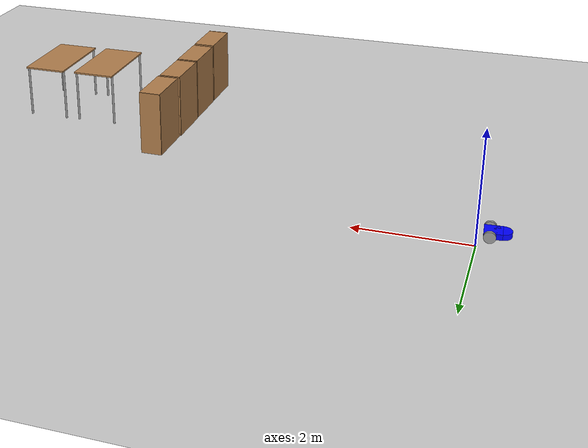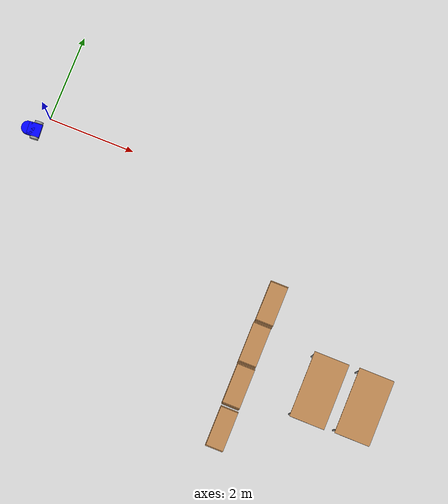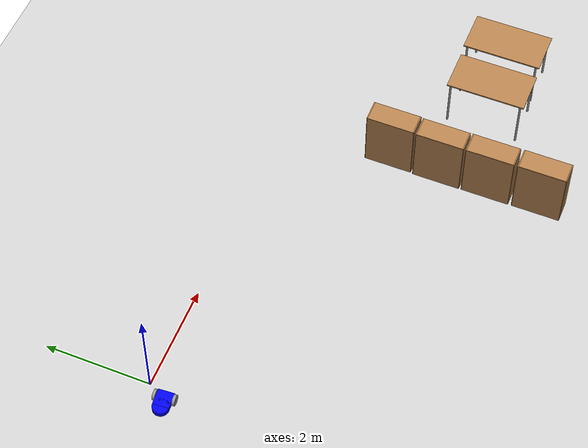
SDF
<sdf version="1.6">
 <world name="default">
  <model name="ground_plane">
   <static>1</static>
   <link name="link">
    <collision name="collision">
     <geometry><plane><normal>0 0 1</normal><size>100 100</size></plane></geometry>
     <surface>
      <contact><collide_bitmask>65535</collide_bitmask></contact>
      <friction><ode><mu>100</mu><mu2>50</mu2></ode></friction>
     </surface>
    </collision>
    <visual name="visual">
     <cast_shadows>0</cast_shadows>
     <geometry><plane><normal>0 0 1</normal><size>100 100</size></plane></geometry>
     <material>
      <script><uri>file://media/materials/scripts/gazebo.material</uri><name>Gazebo/Grey</name></script>
     </material>
    </visual>
   </link>
  </model>
  <model name="table_clone">
   <static>1</static>
   <link name="link">
    <collision name="surface">
     <pose>0 0 1 0 -0 0</pose>
     <geometry><box><size>1.5 0.8 0.03</size></box></geometry>
     <surface><friction><ode><mu>0.6</mu><mu2>0.6</mu2></ode></friction></surface>
    </collision>
    <visual name="visual1">
     <pose>0 0 1 0 -0 0</pose>
     <geometry><box><size>1.5 0.8 0.03</size></box></geometry>
     <material>
      <script><uri>file://media/materials/scripts/gazebo.material</uri><name>Gazebo/Wood</name></script>
     </material>
    </visual>
    <collision name="front_left_leg">
     <pose>0.68 0.38 0.5 0 -0 0</pose>
     <geometry><cylinder><radius>0.02</radius><length>1</length></cylinder></geometry>
    </collision>
    <visual name="front_left_leg">
     <pose>0.68 0.38 0.5 0 -0 0</pose>
     <geometry><cylinder><radius>0.02</radius><length>1</length></cylinder></geometry>
     <material>
      <script><uri>file://media/materials/scripts/gazebo.material</uri><name>Gazebo/Grey</name></script>
     </material>
    </visual>
    <collision name="front_right_leg">
     <pose>0.68 -0.38 0.5 0 -0 0</pose>
     <geometry><cylinder><radius>0.02</radius><length>1</length></cylinder></geometry>
    </collision>
    <visual name="front_right_leg">
     <pose>0.68 -0.38 0.5 0 -0 0</pose>
     <geometry><cylinder><radius>0.02</radius><length>1</length></cylinder></geometry>
     <material>
      <script><uri>file://media/materials/scripts/gazebo.material</uri><name>Gazebo/Grey</name></script>
     </material>
    </visual>
    <collision name="back_right_leg">
     <pose>-0.68 -0.38 0.5 0 -0 0</pose>
     <geometry><cylinder><radius>0.02</radius><length>1</length></cylinder></geometry>
    </collision>
    <visual name="back_right_leg">
     <pose>-0.68 -0.38 0.5 0 -0 0</pose>
     <geometry><cylinder><radius>0.02</radius><length>1</length></cylinder></geometry>
     <material>
      <script><uri>file://media/materials/scripts/gazebo.material</uri><name>Gazebo/Grey</name></script>
     </material>
    </visual>
    <collision name="back_left_leg">
     <pose>-0.68 0.38 0.5 0 -0 0</pose>
     <geometry><cylinder><radius>0.02</radius><length>1</length></cylinder></geometry>
    </collision>
    <visual name="back_left_leg">
     <pose>-0.68 0.38 0.5 0 -0 0</pose>
     <geometry><cylinder><radius>0.02</radius><length>1</length></cylinder></geometry>
     <material>
      <script><uri>file://media/materials/scripts/gazebo.material</uri><name>Gazebo/Grey</name></script>
     </material>
    </visual>
   </link>
   <pose>7.79141 -3.45752 0 0 -0 1.5708</pose>
  </model>
  <model name="table_clone_0">
   <static>1</static>
   <link name="link">
    <collision name="surface">
     <pose>0 0 1 0 -0 0</pose>
     <geometry><box><size>1.5 0.8 0.03</size></box></geometry>
     <surface><friction><ode><mu>0.6</mu><mu2>0.6</mu2></ode></friction></surface>
    </collision>
    <visual name="visual1">
     <pose>0 0 1 0 -0 0</pose>
     <geometry><box><size>1.5 0.8 0.03</size></box></geometry>
     <material>
      <script><uri>file://media/materials/scripts/gazebo.material</uri><name>Gazebo/Wood</name></script>
     </material>
    </visual>
    <collision name="front_left_leg">
     <pose>0.68 0.38 0.5 0 -0 0</pose>
     <geometry><cylinder><radius>0.02</radius><length>1</length></cylinder></geometry>
    </collision>
    <visual name="front_left_leg">
     <pose>0.68 0.38 0.5 0 -0 0</pose>
     <geometry><cylinder><radius>0.02</radius><length>1</length></cylinder></geometry>
     <material>
      <script><uri>file://media/materials/scripts/gazebo.material</uri><name>Gazebo/Grey</name></script>
     </material>
    </visual>
    <collision name="front_right_leg">
     <pose>0.68 -0.38 0.5 0 -0 0</pose>
     <geometry><cylinder><radius>0.02</radius><length>1</length></cylinder></geometry>
    </collision>
    <visual name="front_right_leg">
     <pose>0.68 -0.38 0.5 0 -0 0</pose>
     <geometry><cylinder><radius>0.02</radius><length>1</length></cylinder></geometry>
     <material>
      <script><uri>file://media/materials/scripts/gazebo.material</uri><name>Gazebo/Grey</name></script>
     </material>
    </visual>
    <collision name="back_right_leg">
     <pose>-0.68 -0.38 0.5 0 -0 0</pose>
     <geometry><cylinder><radius>0.02</radius><length>1</length></cylinder></geometry>
    </collision>
    <visual name="back_right_leg">
     <pose>-0.68 -0.38 0.5 0 -0 0</pose>
     <geometry><cylinder><radius>0.02</radius><length>1</length></cylinder></geometry>
     <material>
      <script><uri>file://media/materials/scripts/gazebo.material</uri><name>Gazebo/Grey</name></script>
     </material>
    </visual>
    <collision name="back_left_leg">
     <pose>-0.68 0.38 0.5 0 -0 0</pose>
     <geometry><cylinder><radius>0.02</radius><length>1</length></cylinder></geometry>
    </collision>
    <visual name="back_left_leg">
     <pose>-0.68 0.38 0.5 0 -0 0</pose>
     <geometry><cylinder><radius>0.02</radius><length>1</length></cylinder></geometry>
     <material>
      <script><uri>file://media/materials/scripts/gazebo.material</uri><name>Gazebo/Grey</name></script>
     </material>
    </visual>
   </link>
   <pose>8.82127 -3.42896 0 0 -0 1.5708</pose>
  </model>
  <model name="bookshelf_clone">
   <static>1</static>
   <link name="link">
    <inertial><mass>1</mass></inertial>
    <collision name="back">
     <pose>0 0.005 0.6 0 -0 0</pose>
     <geometry><box><size>0.9 0.01 1.2</size></box></geometry>
    </collision>
    <visual name="visual1">
     <pose>0 0.005 0.6 0 -0 0</pose>
     <geometry><box><size>0.9 0.01 1.2</size></box></geometry>
     <material>
      <script><uri>file://media/materials/scripts/gazebo.material</uri><name>Gazebo/Wood</name></script>
     </material>
    </visual>
    <collision name="left_side">
     <pose>0.45 -0.195 0.6 0 -0 0</pose>
     <geometry><box><size>0.02 0.4 1.2</size></box></geometry>
    </collision>
    <visual name="visual2">
     <pose>0.45 -0.195 0.6 0 -0 0</pose>
     <geometry><box><size>0.02 0.4 1.2</size></box></geometry>
     <material>
      <script><uri>file://media/materials/scripts/gazebo.material</uri><name>Gazebo/Wood</name></script>
     </material>
    </visual>
    <collision name="right_side">
     <pose>-0.45 -0.195 0.6 0 -0 0</pose>
     <geometry><box><size>0.02 0.4 1.2</size></box></geometry>
    </collision>
    <visual name="visual3">
     <pose>-0.45 -0.195 0.6 0 -0 0</pose>
     <geometry><box><size>0.02 0.4 1.2</size></box></geometry>
     <material>
      <script><uri>file://media/materials/scripts/gazebo.material</uri><name>Gazebo/Wood</name></script>
     </material>
    </visual>
    <collision name="bottom">
     <pose>0 -0.195 0.03 0 -0 0</pose>
     <geometry><box><size>0.88 0.4 0.06</size></box></geometry>
    </collision>
    <visual name="visual4">
     <pose>0 -0.195 0.03 0 -0 0</pose>
     <geometry><box><size>0.88 0.4 0.06</size></box></geometry>
     <material>
      <script><uri>file://media/materials/scripts/gazebo.material</uri><name>Gazebo/Wood</name></script>
     </material>
    </visual>
    <collision name="top">
     <pose>0 -0.195 1.19 0 -0 0</pose>
     <geometry><box><size>0.88 0.4 0.02</size></box></geometry>
    </collision>
    <visual name="visual5">
     <pose>0 -0.195 1.19 0 -0 0</pose>
     <geometry><box><size>0.88 0.4 0.02</size></box></geometry>
     <material>
      <script><uri>file://media/materials/scripts/gazebo.material</uri><name>Gazebo/Wood</name></script>
     </material>
    </visual>
    <collision name="low_shelf">
     <pose>0 -0.195 0.43 0 -0 0</pose>
     <geometry><box><size>0.88 0.4 0.02</size></box></geometry>
    </collision>
    <visual name="visual6">
     <pose>0 -0.195 0.43 0 -0 0</pose>
     <geometry><box><size>0.88 0.4 0.02</size></box></geometry>
     <material>
      <script><uri>file://media/materials/scripts/gazebo.material</uri><name>Gazebo/Wood</name></script>
     </material>
    </visual>
    <collision name="high_shelf">
     <pose>0 -0.195 0.8 0 -0 0</pose>
     <geometry><box><size>0.88 0.4 0.02</size></box></geometry>
    </collision>
    <visual name="visual7">
     <pose>0 -0.195 0.8 0 -0 0</pose>
     <geometry><box><size>0.88 0.4 0.02</size></box></geometry>
     <material>
      <script><uri>file://media/materials/scripts/gazebo.material</uri><name>Gazebo/Wood</name></script>
     </material>
    </visual>
   </link>
   <pose>5.95095 -5.00341 0 0 -0 1.5708</pose>
  </model>
  <model name="bookshelf_clone_0">
   <static>1</static>
   <link name="link">
    <inertial><mass>1</mass></inertial>
    <collision name="back">
     <pose>0 0.005 0.6 0 -0 0</pose>
     <geometry><box><size>0.9 0.01 1.2</size></box></geometry>
    </collision>
    <visual name="visual1">
     <pose>0 0.005 0.6 0 -0 0</pose>
     <geometry><box><size>0.9 0.01 1.2</size></box></geometry>
     <material>
      <script><uri>file://media/materials/scripts/gazebo.material</uri><name>Gazebo/Wood</name></script>
     </material>
    </visual>
    <collision name="left_side">
     <pose>0.45 -0.195 0.6 0 -0 0</pose>
     <geometry><box><size>0.02 0.4 1.2</size></box></geometry>
    </collision>
    <visual name="visual2">
     <pose>0.45 -0.195 0.6 0 -0 0</pose>
     <geometry><box><size>0.02 0.4 1.2</size></box></geometry>
     <material>
      <script><uri>file://media/materials/scripts/gazebo.material</uri><name>Gazebo/Wood</name></script>
     </material>
    </visual>
    <collision name="right_side">
     <pose>-0.45 -0.195 0.6 0 -0 0</pose>
     <geometry><box><size>0.02 0.4 1.2</size></box></geometry>
    </collision>
    <visual name="visual3">
     <pose>-0.45 -0.195 0.6 0 -0 0</pose>
     <geometry><box><size>0.02 0.4 1.2</size></box></geometry>
     <material>
      <script><uri>file://media/materials/scripts/gazebo.material</uri><name>Gazebo/Wood</name></script>
     </material>
    </visual>
    <collision name="bottom">
     <pose>0 -0.195 0.03 0 -0 0</pose>
     <geometry><box><size>0.88 0.4 0.06</size></box></geometry>
    </collision>
    <visual name="visual4">
     <pose>0 -0.195 0.03 0 -0 0</pose>
     <geometry><box><size>0.88 0.4 0.06</size></box></geometry>
     <material>
      <script><uri>file://media/materials/scripts/gazebo.material</uri><name>Gazebo/Wood</name></script>
     </material>
    </visual>
    <collision name="top">
     <pose>0 -0.195 1.19 0 -0 0</pose>
     <geometry><box><size>0.88 0.4 0.02</size></box></geometry>
    </collision>
    <visual name="visual5">
     <pose>0 -0.195 1.19 0 -0 0</pose>
     <geometry><box><size>0.88 0.4 0.02</size></box></geometry>
     <material>
      <script><uri>file://media/materials/scripts/gazebo.material</uri><name>Gazebo/Wood</name></script>
     </material>
    </visual>
    <collision name="low_shelf">
     <pose>0 -0.195 0.43 0 -0 0</pose>
     <geometry><box><size>0.88 0.4 0.02</size></box></geometry>
    </collision>
    <visual name="visual6">
     <pose>0 -0.195 0.43 0 -0 0</pose>
     <geometry><box><size>0.88 0.4 0.02</size></box></geometry>
     <material>
      <script><uri>file://media/materials/scripts/gazebo.material</uri><name>Gazebo/Wood</name></script>
     </material>
    </visual>
    <collision name="high_shelf">
     <pose>0 -0.195 0.8 0 -0 0</pose>
     <geometry><box><size>0.88 0.4 0.02</size></box></geometry>
    </collision>
    <visual name="visual7">
     <pose>0 -0.195 0.8 0 -0 0</pose>
     <geometry><box><size>0.88 0.4 0.02</size></box></geometry>
     <material>
      <script><uri>file://media/materials/scripts/gazebo.material</uri><name>Gazebo/Wood</name></script>
     </material>
    </visual>
   </link>
   <pose>5.94427 -4.02578 0 0 -0 1.5708</pose>
  </model>
  <model name="bookshelf_clone_1">
   <static>1</static>
   <link name="link">
    <inertial><mass>1</mass></inertial>
    <collision name="back">
     <pose>0 0.005 0.6 0 -0 0</pose>
     <geometry><box><size>0.9 0.01 1.2</size></box></geometry>
    </collision>
    <visual name="visual1">
     <pose>0 0.005 0.6 0 -0 0</pose>
     <geometry><box><size>0.9 0.01 1.2</size></box></geometry>
     <material>
      <script><uri>file://media/materials/scripts/gazebo.material</uri><name>Gazebo/Wood</name></script>
     </material>
    </visual>
    <collision name="left_side">
     <pose>0.45 -0.195 0.6 0 -0 0</pose>
     <geometry><box><size>0.02 0.4 1.2</size></box></geometry>
    </collision>
    <visual name="visual2">
     <pose>0.45 -0.195 0.6 0 -0 0</pose>
     <geometry><box><size>0.02 0.4 1.2</size></box></geometry>
     <material>
      <script><uri>file://media/materials/scripts/gazebo.material</uri><name>Gazebo/Wood</name></script>
     </material>
    </visual>
    <collision name="right_side">
     <pose>-0.45 -0.195 0.6 0 -0 0</pose>
     <geometry><box><size>0.02 0.4 1.2</size></box></geometry>
    </collision>
    <visual name="visual3">
     <pose>-0.45 -0.195 0.6 0 -0 0</pose>
     <geometry><box><size>0.02 0.4 1.2</size></box></geometry>
     <material>
      <script><uri>file://media/materials/scripts/gazebo.material</uri><name>Gazebo/Wood</name></script>
     </material>
    </visual>
    <collision name="bottom">
     <pose>0 -0.195 0.03 0 -0 0</pose>
     <geometry><box><size>0.88 0.4 0.06</size></box></geometry>
    </collision>
    <visual name="visual4">
     <pose>0 -0.195 0.03 0 -0 0</pose>
     <geometry><box><size>0.88 0.4 0.06</size></box></geometry>
     <material>
      <script><uri>file://media/materials/scripts/gazebo.material</uri><name>Gazebo/Wood</name></script>
     </material>
    </visual>
    <collision name="top">
     <pose>0 -0.195 1.19 0 -0 0</pose>
     <geometry><box><size>0.88 0.4 0.02</size></box></geometry>
    </collision>
    <visual name="visual5">
     <pose>0 -0.195 1.19 0 -0 0</pose>
     <geometry><box><size>0.88 0.4 0.02</size></box></geometry>
     <material>
      <script><uri>file://media/materials/scripts/gazebo.material</uri><name>Gazebo/Wood</name></script>
     </material>
    </visual>
    <collision name="low_shelf">
     <pose>0 -0.195 0.43 0 -0 0</pose>
     <geometry><box><size>0.88 0.4 0.02</size></box></geometry>
    </collision>
    <visual name="visual6">
     <pose>0 -0.195 0.43 0 -0 0</pose>
     <geometry><box><size>0.88 0.4 0.02</size></box></geometry>
     <material>
      <script><uri>file://media/materials/scripts/gazebo.material</uri><name>Gazebo/Wood</name></script>
     </material>
    </visual>
    <collision name="high_shelf">
     <pose>0 -0.195 0.8 0 -0 0</pose>
     <geometry><box><size>0.88 0.4 0.02</size></box></geometry>
    </collision>
    <visual name="visual7">
     <pose>0 -0.195 0.8 0 -0 0</pose>
     <geometry><box><size>0.88 0.4 0.02</size></box></geometry>
     <material>
      <script><uri>file://media/materials/scripts/gazebo.material</uri><name>Gazebo/Wood</name></script>
     </material>
    </visual>
   </link>
   <pose>5.93869 -3.06933 0 0 -0 1.5708</pose>
  </model>
  <model name="bookshelf_clone_2">
   <static>1</static>
   <link name="link">
    <inertial><mass>1</mass></inertial>
    <collision name="back">
     <pose>0 0.005 0.6 0 -0 0</pose>
     <geometry><box><size>0.9 0.01 1.2</size></box></geometry>
    </collision>
    <visual name="visual1">
     <pose>0 0.005 0.6 0 -0 0</pose>
     <geometry><box><size>0.9 0.01 1.2</size></box></geometry>
     <material>
      <script><uri>file://media/materials/scripts/gazebo.material</uri><name>Gazebo/Wood</name></script>
     </material>
    </visual>
    <collision name="left_side">
     <pose>0.45 -0.195 0.6 0 -0 0</pose>
     <geometry><box><size>0.02 0.4 1.2</size></box></geometry>
    </collision>
    <visual name="visual2">
     <pose>0.45 -0.195 0.6 0 -0 0</pose>
     <geometry><box><size>0.02 0.4 1.2</size></box></geometry>
     <material>
      <script><uri>file://media/materials/scripts/gazebo.material</uri><name>Gazebo/Wood</name></script>
     </material>
    </visual>
    <collision name="right_side">
     <pose>-0.45 -0.195 0.6 0 -0 0</pose>
     <geometry><box><size>0.02 0.4 1.2</size></box></geometry>
    </collision>
    <visual name="visual3">
     <pose>-0.45 -0.195 0.6 0 -0 0</pose>
     <geometry><box><size>0.02 0.4 1.2</size></box></geometry>
     <material>
      <script><uri>file://media/materials/scripts/gazebo.material</uri><name>Gazebo/Wood</name></script>
     </material>
    </visual>
    <collision name="bottom">
     <pose>0 -0.195 0.03 0 -0 0</pose>
     <geometry><box><size>0.88 0.4 0.06</size></box></geometry>
    </collision>
    <visual name="visual4">
     <pose>0 -0.195 0.03 0 -0 0</pose>
     <geometry><box><size>0.88 0.4 0.06</size></box></geometry>
     <material>
      <script><uri>file://media/materials/scripts/gazebo.material</uri><name>Gazebo/Wood</name></script>
     </material>
    </visual>
    <collision name="top">
     <pose>0 -0.195 1.19 0 -0 0</pose>
     <geometry><box><size>0.88 0.4 0.02</size></box></geometry>
    </collision>
    <visual name="visual5">
     <pose>0 -0.195 1.19 0 -0 0</pose>
     <geometry><box><size>0.88 0.4 0.02</size></box></geometry>
     <material>
      <script><uri>file://media/materials/scripts/gazebo.material</uri><name>Gazebo/Wood</name></script>
     </material>
    </visual>
    <collision name="low_shelf">
     <pose>0 -0.195 0.43 0 -0 0</pose>
     <geometry><box><size>0.88 0.4 0.02</size></box></geometry>
    </collision>
    <visual name="visual6">
     <pose>0 -0.195 0.43 0 -0 0</pose>
     <geometry><box><size>0.88 0.4 0.02</size></box></geometry>
     <material>
      <script><uri>file://media/materials/scripts/gazebo.material</uri><name>Gazebo/Wood</name></script>
     </material>
    </visual>
    <collision name="high_shelf">
     <pose>0 -0.195 0.8 0 -0 0</pose>
     <geometry><box><size>0.88 0.4 0.02</size></box></geometry>
    </collision>
    <visual name="visual7">
     <pose>0 -0.195 0.8 0 -0 0</pose>
     <geometry><box><size>0.88 0.4 0.02</size></box></geometry>
     <material>
      <script><uri>file://media/materials/scripts/gazebo.material</uri><name>Gazebo/Wood</name></script>
     </material>
    </visual>
   </link>
   <pose>5.95448 -2.11176 0 0 -0 1.5708</pose>
  </model>
  <model name="robot-03">
   <link name="link_0">
    <pose>-4.44604 -7.61761 0.065 0 -0 0</pose>
    <inertial>
     <mass>1</mass>
     <inertia>
      <ixx>0.166667</ixx>
      <ixy>0</ixy>
      <ixz>0</ixz>
      <iyy>0.166667</iyy>
      <iyz>0</iyz>
      <izz>0.166667</izz>
     </inertia>
    </inertial>
    <visual name="visual">
     <geometry><box><size>0.3 0.3 0.1</size></box></geometry>
     <material>
      <lighting>1</lighting>
      <script><uri>file://media/materials/scripts/gazebo.material</uri><name>Gazebo/Grey</name></script>
      <shader type="pixel"><normal_map>__default__</normal_map></shader>
      <ambient>0.03 0.03 0.3 1</ambient>
      <diffuse>0 0 1 1</diffuse>
      <specular>0.01 0.01 0.01 1</specular>
      <emissive>0 0 0 1</emissive>
     </material>
    </visual>
    <collision name="collision">
     <geometry><box><size>0.3 0.3 0.1</size></box></geometry>
     <surface>
      <friction>
       <ode><mu>1</mu><mu2>1</mu2><fdir1>0 0 0</fdir1><slip1>0</slip1><slip2>0</slip2></ode>
       <torsional>
        <coefficient>1</coefficient>
        <patch_radius>0</patch_radius>
        <surface_radius>0</surface_radius>
        <use_patch_radius>1</use_patch_radius>
        <ode><slip>0</slip></ode>
       </torsional>
      </friction>
      <bounce><restitution_coefficient>0</restitution_coefficient><threshold>1e+06</threshold></bounce>
      <contact>
       <collide_without_contact>0</collide_without_contact>
       <collide_without_contact_bitmask>1</collide_without_contact_bitmask>
       <collide_bitmask>1</collide_bitmask>
       <ode>
        <soft_cfm>0</soft_cfm>
        <soft_erp>0.2</soft_erp>
        <kp>1e+13</kp>
        <kd>1</kd>
        <max_vel>0.01</max_vel>
        <min_depth>0</min_depth>
       </ode>
       <bullet>
        <split_impulse>1</split_impulse>
        <split_impulse_penetration_threshold>-0.01</split_impulse_penetration_threshold>
        <soft_cfm>0</soft_cfm>
        <soft_erp>0.2</soft_erp>
        <kp>1e+13</kp>
        <kd>1</kd>
       </bullet>
      </contact>
     </surface>
    </collision>
   </link>
   <link name="link_1">
    <pose>-4.44604 -7.76761 0.065 0 -0 0</pose>
    <inertial>
     <mass>1</mass>
     <inertia><ixx>0.145833</ixx><ixy>0</ixy><ixz>0</ixz><iyy>0.145833</iyy><iyz>0</iyz><izz>0.125</izz></inertia>
    </inertial>
    <visual name="visual">
     <geometry><cylinder><radius>0.15</radius><length>0.1</length></cylinder></geometry>
     <material>
      <lighting>1</lighting>
      <script><uri>file://media/materials/scripts/gazebo.material</uri><name>Gazebo/Grey</name></script>
      <shader type="pixel"><normal_map>__default__</normal_map></shader>
      <ambient>0.03 0.03 0.3 1</ambient>
      <diffuse>0 0 1 1</diffuse>
      <specular>0.01 0.01 0.01 1</specular>
      <emissive>0 0 0 1</emissive>
     </material>
    </visual>
    <collision name="collision">
     <geometry><cylinder><radius>0.15</radius><length>0.1</length></cylinder></geometry>
     <surface>
      <friction>
       <ode><mu>1</mu><mu2>1</mu2><fdir1>0 0 0</fdir1><slip1>0</slip1><slip2>0</slip2></ode>
       <torsional>
        <coefficient>1</coefficient>
        <patch_radius>0</patch_radius>
        <surface_radius>0</surface_radius>
        <use_patch_radius>1</use_patch_radius>
        <ode><slip>0</slip></ode>
       </torsional>
      </friction>
      <bounce><restitution_coefficient>0</restitution_coefficient><threshold>1e+06</threshold></bounce>
      <contact>
       <collide_without_contact>0</collide_without_contact>
       <collide_without_contact_bitmask>1</collide_without_contact_bitmask>
       <collide_bitmask>1</collide_bitmask>
       <ode>
        <soft_cfm>0</soft_cfm>
        <soft_erp>0.2</soft_erp>
        <kp>1e+13</kp>
        <kd>1</kd>
        <max_vel>0.01</max_vel>
        <min_depth>0</min_depth>
       </ode>
       <bullet>
        <split_impulse>1</split_impulse>
        <split_impulse_penetration_threshold>-0.01</split_impulse_penetration_threshold>
        <soft_cfm>0</soft_cfm>
        <soft_erp>0.2</soft_erp>
        <kp>1e+13</kp>
        <kd>1</kd>
       </bullet>
      </contact>
     </surface>
    </collision>
   </link>
   <link name="link_2">
    <pose>-4.44604 -7.76761 0.015 0 -0 0</pose>
    <inertial>
     <mass>1</mass>
     <inertia><ixx>0.1</ixx><ixy>0</ixy><ixz>0</ixz><iyy>0.1</iyy><iyz>0</iyz><izz>0.1</izz></inertia>
    </inertial>
    <visual name="visual">
     <geometry><sphere><radius>0.05</radius></sphere></geometry>
     <material>
      <lighting>1</lighting>
      <script><uri>file://media/materials/scripts/gazebo.material</uri><name>Gazebo/Grey</name></script>
      <shader type="pixel"><normal_map>__default__</normal_map></shader>
      <ambient>0.5 0.5 0.5 1</ambient>
      <diffuse>0.9 0.9 0.9 1</diffuse>
      <specular>0.01 0.01 0.01 1</specular>
      <emissive>0 0 0 1</emissive>
     </material>
    </visual>
    <collision name="collision">
     <geometry><sphere><radius>0.05</radius></sphere></geometry>
     <surface>
      <friction>
       <ode><mu>1</mu><mu2>1</mu2><fdir1>0 0 0</fdir1><slip1>0</slip1><slip2>0</slip2></ode>
       <torsional>
        <coefficient>1</coefficient>
        <patch_radius>0</patch_radius>
        <surface_radius>0</surface_radius>
        <use_patch_radius>1</use_patch_radius>
        <ode><slip>0</slip></ode>
       </torsional>
      </friction>
      <bounce><restitution_coefficient>0</restitution_coefficient><threshold>1e+06</threshold></bounce>
      <contact>
       <collide_without_contact>0</collide_without_contact>
       <collide_without_contact_bitmask>1</collide_without_contact_bitmask>
       <collide_bitmask>1</collide_bitmask>
       <ode>
        <soft_cfm>0</soft_cfm>
        <soft_erp>0.2</soft_erp>
        <kp>1e+13</kp>
        <kd>1</kd>
        <max_vel>0.01</max_vel>
        <min_depth>0</min_depth>
       </ode>
       <bullet>
        <split_impulse>1</split_impulse>
        <split_impulse_penetration_threshold>-0.01</split_impulse_penetration_threshold>
        <soft_cfm>0</soft_cfm>
        <soft_erp>0.2</soft_erp>
        <kp>1e+13</kp>
        <kd>1</kd>
       </bullet>
      </contact>
     </surface>
    </collision>
   </link>
   <link name="link_3">
    <pose>-4.62604 -7.56761 0.065 3.14159 1.56351 3.14159</pose>
    <inertial>
     <mass>1</mass>
     <inertia><ixx>0.145833</ixx><ixy>0</ixy><ixz>0</ixz><iyy>0.145833</iyy><iyz>0</iyz><izz>0.125</izz></inertia>
    </inertial>
    <visual name="visual">
     <geometry><cylinder><radius>0.1</radius><length>0.05</length></cylinder></geometry>
     <material>
      <lighting>1</lighting>
      <script><uri>file://media/materials/scripts/gazebo.material</uri><name>Gazebo/Grey</name></script>
      <shader type="pixel"><normal_map>__default__</normal_map></shader>
      <ambient>0.2 0.2 0.2 1</ambient>
      <diffuse>0.5 0.5 0.5 1</diffuse>
      <specular>0.01 0.01 0.01 1</specular>
      <emissive>0 0 0 1</emissive>
     </material>
    </visual>
    <collision name="collision">
     <geometry><cylinder><radius>0.1</radius><length>0.05</length></cylinder></geometry>
     <surface>
      <friction>
       <ode><mu>1</mu><mu2>1</mu2><fdir1>0 0 0</fdir1><slip1>0</slip1><slip2>0</slip2></ode>
       <torsional>
        <coefficient>1</coefficient>
        <patch_radius>0</patch_radius>
        <surface_radius>0</surface_radius>
        <use_patch_radius>1</use_patch_radius>
        <ode><slip>0</slip></ode>
       </torsional>
      </friction>
      <bounce><restitution_coefficient>0</restitution_coefficient><threshold>1e+06</threshold></bounce>
      <contact>
       <collide_without_contact>0</collide_without_contact>
       <collide_without_contact_bitmask>1</collide_without_contact_bitmask>
       <collide_bitmask>1</collide_bitmask>
       <ode>
        <soft_cfm>0</soft_cfm>
        <soft_erp>0.2</soft_erp>
        <kp>1e+13</kp>
        <kd>1</kd>
        <max_vel>0.01</max_vel>
        <min_depth>0</min_depth>
       </ode>
       <bullet>
        <split_impulse>1</split_impulse>
        <split_impulse_penetration_threshold>-0.01</split_impulse_penetration_threshold>
        <soft_cfm>0</soft_cfm>
        <soft_erp>0.2</soft_erp>
        <kp>1e+13</kp>
        <kd>1</kd>
       </bullet>
      </contact>
     </surface>
    </collision>
   </link>
   <link name="link_3_clone">
    <pose>-4.26604 -7.56761 0.065 3.14159 1.56351 3.14159</pose>
    <inertial>
     <mass>1</mass>
     <inertia><ixx>0.145833</ixx><ixy>0</ixy><ixz>0</ixz><iyy>0.145833</iyy><iyz>0</iyz><izz>0.125</izz></inertia>
    </inertial>
    <visual name="visual">
     <geometry><cylinder><radius>0.1</radius><length>0.05</length></cylinder></geometry>
     <material>
      <lighting>1</lighting>
      <script><uri>file://media/materials/scripts/gazebo.material</uri><name>Gazebo/Grey</name></script>
      <shader type="pixel"><normal_map>__default__</normal_map></shader>
      <ambient>0.2 0.2 0.2 1</ambient>
      <diffuse>0.5 0.5 0.5 1</diffuse>
      <specular>0.01 0.01 0.01 1</specular>
      <emissive>0 0 0 1</emissive>
     </material>
    </visual>
    <collision name="collision">
     <geometry><cylinder><radius>0.1</radius><length>0.05</length></cylinder></geometry>
     <surface>
      <friction>
       <ode><mu>1</mu><mu2>1</mu2><fdir1>0 0 0</fdir1><slip1>0</slip1><slip2>0</slip2></ode>
       <torsional>
        <coefficient>1</coefficient>
        <patch_radius>0</patch_radius>
        <surface_radius>0</surface_radius>
        <use_patch_radius>1</use_patch_radius>
        <ode><slip>0</slip></ode>
       </torsional>
      </friction>
      <bounce><restitution_coefficient>0</restitution_coefficient><threshold>1e+06</threshold></bounce>
      <contact>
       <collide_without_contact>0</collide_without_contact>
       <collide_without_contact_bitmask>1</collide_without_contact_bitmask>
       <collide_bitmask>1</collide_bitmask>
       <ode>
        <soft_cfm>0</soft_cfm>
        <soft_erp>0.2</soft_erp>
        <kp>1e+13</kp>
        <kd>1</kd>
        <max_vel>0.01</max_vel>
        <min_depth>0</min_depth>
       </ode>
       <bullet>
        <split_impulse>1</split_impulse>
        <split_impulse_penetration_threshold>-0.01</split_impulse_penetration_threshold>
        <soft_cfm>0</soft_cfm>
        <soft_erp>0.2</soft_erp>
        <kp>1e+13</kp>
        <kd>1</kd>
       </bullet>
      </contact>
     </surface>
    </collision>
   </link>
   <joint name="link_0_JOINT_1" type="fixed">
    <parent>link_0</parent>
    <child>link_1</child>
    <physics>
     <ode><limit><cfm>0</cfm><erp>0.2</erp></limit><suspension><cfm>0</cfm><erp>0.2</erp></suspension></ode>
    </physics>
   </joint>
   <joint name="link_0_JOINT_3" type="revolute">
    <parent>link_0</parent>
    <child>link_3</child>
    <axis>
     <xyz>0 0 1</xyz>
     <use_parent_model_frame>0</use_parent_model_frame>
     <limit>
      <lower>-1.79769e+308</lower>
      <upper>1.79769e+308</upper>
      <effort>-1</effort>
      <velocity>-1</velocity>
     </limit>
     <dynamics>
      <spring_reference>0</spring_reference>
      <spring_stiffness>0</spring_stiffness>
      <damping>0</damping>
      <friction>0</friction>
     </dynamics>
    </axis>
    <physics>
     <ode><limit><cfm>0</cfm><erp>0.2</erp></limit><suspension><cfm>0</cfm><erp>0.2</erp></suspension></ode>
    </physics>
   </joint>
   <joint name="link_0_JOINT_4" type="revolute">
    <parent>link_0</parent>
    <child>link_3_clone</child>
    <axis>
     <xyz>0 0 1</xyz>
     <use_parent_model_frame>0</use_parent_model_frame>
     <limit>
      <lower>-1.79769e+308</lower>
      <upper>1.79769e+308</upper>
      <effort>-1</effort>
      <velocity>-1</velocity>
     </limit>
     <dynamics>
      <spring_reference>0</spring_reference>
      <spring_stiffness>0</spring_stiffness>
      <damping>0</damping>
      <friction>0</friction>
     </dynamics>
    </axis>
    <physics>
     <ode><limit><cfm>0</cfm><erp>0.2</erp></limit><suspension><cfm>0</cfm><erp>0.2</erp></suspension></ode>
    </physics>
   </joint>
   <joint name="link_1_JOINT_2" type="fixed">
    <parent>link_1</parent>
    <child>link_2</child>
    <physics>
     <ode><limit><cfm>0</cfm><erp>0.2</erp></limit><suspension><cfm>0</cfm><erp>0.2</erp></suspension></ode>
    </physics>
   </joint>
   <static>0</static>
   <pose>7.68916 -4.24997 0.042081 0.000911 -2e-06 -1.49818</pose>
  </model>
 </world>
</sdf>
